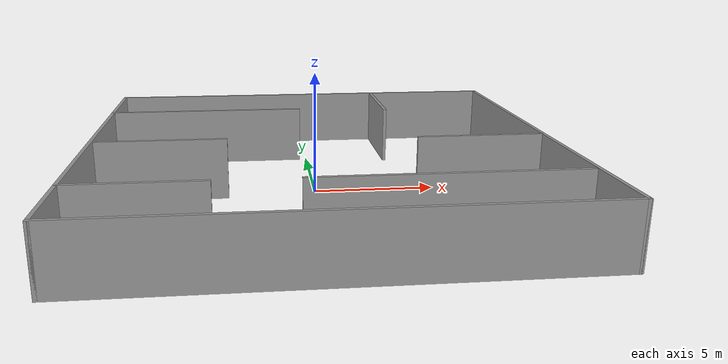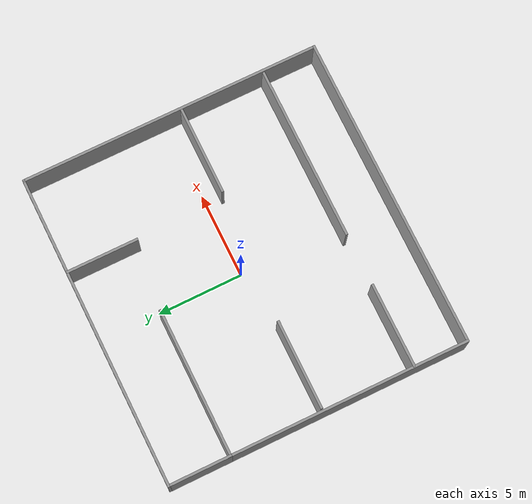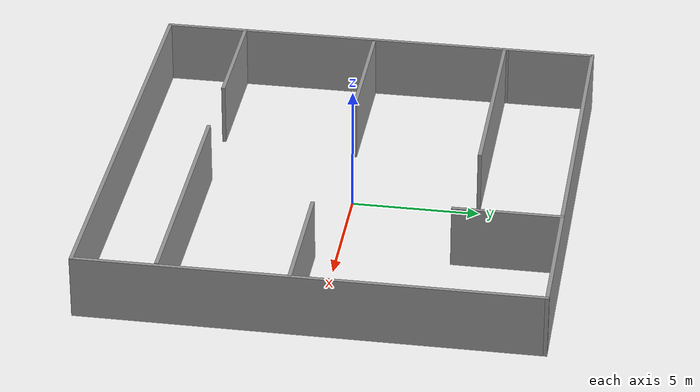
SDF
<?xml version='1.0'?>
<sdf version='1.7'>
  <model name='Map3'>
    <pose>0.214727 -0.257108 0 0 -0 0</pose>
    <link name='Wall_13'>
      <collision name='Wall_13_Collision'>
        <geometry>
          <box>
            <size>18.5 0.15 2.5</size>
          </box>
        </geometry>
        <pose>0 0 1.25 0 -0 0</pose>
      </collision>
      <visual name='Wall_13_Visual'>
        <pose>0 0 1.25 0 -0 0</pose>
        <geometry>
          <box>
            <size>18.5 0.15 2.5</size>
          </box>
        </geometry>
        <material>
          <script>
            <uri>file://media/materials/scripts/gazebo.material</uri>
            <name>Gazebo/Grey</name>
          </script>
          <ambient>1 1 1 1</ambient>
        </material>
        <meta>
          <layer>0</layer>
        </meta>
      </visual>
      <pose>0 8.8 0 0 -0 3.14159</pose>
    </link>
    <link name='Wall_14'>
      <collision name='Wall_14_Collision'>
        <geometry>
          <box>
            <size>3.75 0.15 2.5</size>
          </box>
        </geometry>
        <pose>0 0 1.25 0 -0 0</pose>
      </collision>
      <visual name='Wall_14_Visual'>
        <pose>0 0 1.25 0 -0 0</pose>
        <geometry>
          <box>
            <size>3.75 0.15 2.5</size>
          </box>
        </geometry>
        <material>
          <script>
            <uri>file://media/materials/scripts/gazebo.material</uri>
            <name>Gazebo/Grey</name>
          </script>
          <ambient>1 1 1 1</ambient>
        </material>
        <meta>
          <layer>0</layer>
        </meta>
      </visual>
      <pose>-9.175 7 0 0 -0 -1.5708</pose>
    </link>
    <link name='Wall_16'>
      <collision name='Wall_16_Collision'>
        <geometry>
          <box>
            <size>5 0.15 2.5</size>
          </box>
        </geometry>
        <pose>0 0 1.25 0 -0 0</pose>
      </collision>
      <visual name='Wall_16_Visual'>
        <pose>0 0 1.25 0 -0 0</pose>
        <geometry>
          <box>
            <size>5 0.15 2.5</size>
          </box>
        </geometry>
        <material>
          <script>
            <uri>file://media/materials/scripts/gazebo.material</uri>
            <name>Gazebo/Grey</name>
          </script>
          <ambient>1 1 1 1</ambient>
        </material>
        <meta>
          <layer>0</layer>
        </meta>
      </visual>
      <pose>-6.70954 -5.62301 0 0 -0 0</pose>
    </link>
    <link name='Wall_18'>
      <collision name='Wall_18_Collision'>
        <geometry>
          <box>
            <size>10.25 0.15 2.5</size>
          </box>
        </geometry>
        <pose>0 0 1.25 0 -0 0</pose>
      </collision>
      <visual name='Wall_18_Visual'>
        <pose>0 0 1.25 0 -0 0</pose>
        <geometry>
          <box>
            <size>10.25 0.15 2.5</size>
          </box>
        </geometry>
        <material>
          <script>
            <uri>file://media/materials/scripts/gazebo.material</uri>
            <name>Gazebo/Grey</name>
          </script>
          <ambient>1 1 1 1</ambient>
        </material>
        <meta>
          <layer>0</layer>
        </meta>
      </visual>
      <pose>3.93955 -5.62301 0 0 -0 3.14159</pose>
    </link>
    <link name='Wall_20'>
      <collision name='Wall_20_Collision'>
        <geometry>
          <box>
            <size>4.25 0.15 2.5</size>
          </box>
        </geometry>
        <pose>0 0 1.25 0 -0 0</pose>
      </collision>
      <visual name='Wall_20_Visual'>
        <pose>0 0 1.25 0 -0 0</pose>
        <geometry>
          <box>
            <size>4.25 0.15 2.5</size>
          </box>
        </geometry>
        <material>
          <script>
            <uri>file://media/materials/scripts/gazebo.material</uri>
            <name>Gazebo/Grey</name>
          </script>
          <ambient>1 1 1 1</ambient>
        </material>
        <meta>
          <layer>0</layer>
        </meta>
      </visual>
      <pose>3.52805 6.72918 0 0 -0 -1.5708</pose>
    </link>
    <link name='Wall_22'>
      <collision name='Wall_22_Collision'>
        <geometry>
          <box>
            <size>5.25 0.15 2.5</size>
          </box>
        </geometry>
        <pose>0 0 1.25 0 -0 0</pose>
      </collision>
      <visual name='Wall_22_Visual'>
        <pose>0 0 1.25 0 -0 0</pose>
        <geometry>
          <box>
            <size>5.25 0.15 2.5</size>
          </box>
        </geometry>
        <material>
          <script>
            <uri>file://media/materials/scripts/gazebo.material</uri>
            <name>Gazebo/Grey</name>
          </script>
          <ambient>1 1 1 1</ambient>
        </material>
        <meta>
          <layer>0</layer>
        </meta>
      </visual>
      <pose>-6.42272 -0.201958 0 0 -0 0</pose>
    </link>
    <link name='Wall_24'>
      <collision name='Wall_24_Collision'>
        <geometry>
          <box>
            <size>8.75 0.15 2.5</size>
          </box>
        </geometry>
        <pose>0 0 1.25 0 -0 0</pose>
      </collision>
      <visual name='Wall_24_Visual'>
        <pose>0 0 1.25 0 -0 0</pose>
        <geometry>
          <box>
            <size>8.75 0.15 2.5</size>
          </box>
        </geometry>
        <material>
          <script>
            <uri>file://media/materials/scripts/gazebo.material</uri>
            <name>Gazebo/Grey</name>
          </script>
          <ambient>1 1 1 1</ambient>
        </material>
        <meta>
          <layer>0</layer>
        </meta>
      </visual>
      <pose>-4.875 5.2 0 0 -0 0</pose>
    </link>
    <link name='Wall_26'>
      <collision name='Wall_26_Collision'>
        <geometry>
          <box>
            <size>5.25 0.15 2.5</size>
          </box>
        </geometry>
        <pose>0 0 1.25 0 -0 0</pose>
      </collision>
      <visual name='Wall_26_Visual'>
        <pose>0 0 1.25 0 -0 0</pose>
        <geometry>
          <box>
            <size>5.25 0.15 2.5</size>
          </box>
        </geometry>
        <material>
          <script>
            <uri>file://media/materials/scripts/gazebo.material</uri>
            <name>Gazebo/Grey</name>
          </script>
          <ambient>1 1 1 1</ambient>
        </material>
        <meta>
          <layer>0</layer>
        </meta>
      </visual>
      <pose>6.52046 -0.64697 0 0 -0 3.14159</pose>
    </link>
    <link name='Wall_3'>
      <collision name='Wall_3_Collision'>
        <geometry>
          <box>
            <size>14.25 0.15 2.5</size>
          </box>
        </geometry>
        <pose>0 0 1.25 0 -0 0</pose>
      </collision>
      <visual name='Wall_3_Visual'>
        <pose>0 0 1.25 0 -0 0</pose>
        <geometry>
          <box>
            <size>14.25 0.15 2.5</size>
          </box>
        </geometry>
        <material>
          <script>
            <uri>file://media/materials/scripts/gazebo.material</uri>
            <name>Gazebo/Grey</name>
          </script>
          <ambient>1 1 1 1</ambient>
        </material>
        <meta>
          <layer>0</layer>
        </meta>
      </visual>
      <pose>-9.175 -1.75 0 0 -0 -1.5708</pose>
    </link>
    <link name='Wall_4'>
      <collision name='Wall_4_Collision'>
        <geometry>
          <box>
            <size>18.5 0.15 2.5</size>
          </box>
        </geometry>
        <pose>0 0 1.25 0 -0 0</pose>
      </collision>
      <visual name='Wall_4_Visual'>
        <pose>0 0 1.25 0 -0 0</pose>
        <geometry>
          <box>
            <size>18.5 0.15 2.5</size>
          </box>
        </geometry>
        <material>
          <script>
            <uri>file://media/materials/scripts/gazebo.material</uri>
            <name>Gazebo/Grey</name>
          </script>
          <ambient>1 1 1 1</ambient>
        </material>
        <meta>
          <layer>0</layer>
        </meta>
      </visual>
      <pose>0 -8.8 0 0 -0 0</pose>
    </link>
    <link name='Wall_5'>
      <collision name='Wall_5_Collision'>
        <geometry>
          <box>
            <size>17.75 0.15 2.5</size>
          </box>
        </geometry>
        <pose>0 0 1.25 0 -0 0</pose>
      </collision>
      <visual name='Wall_5_Visual'>
        <pose>0 0 1.25 0 -0 0</pose>
        <geometry>
          <box>
            <size>17.75 0.15 2.5</size>
          </box>
        </geometry>
        <material>
          <script>
            <uri>file://media/materials/scripts/gazebo.material</uri>
            <name>Gazebo/Grey</name>
          </script>
          <ambient>1 1 1 1</ambient>
        </material>
        <meta>
          <layer>0</layer>
        </meta>
      </visual>
      <pose>9.175 0 0 0 -0 1.5708</pose>
    </link>
    <static>1</static>
  </model>
</sdf>
